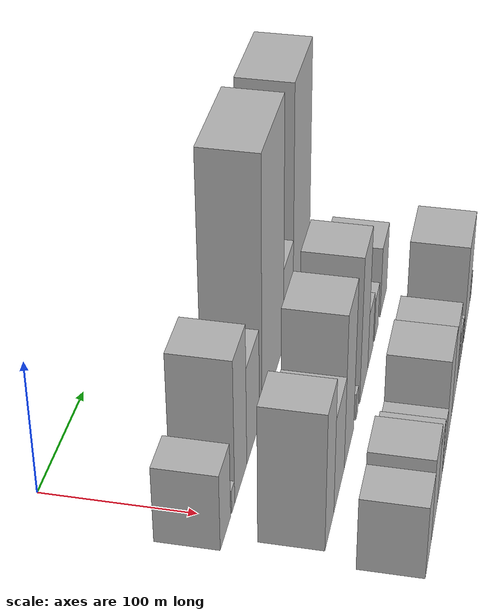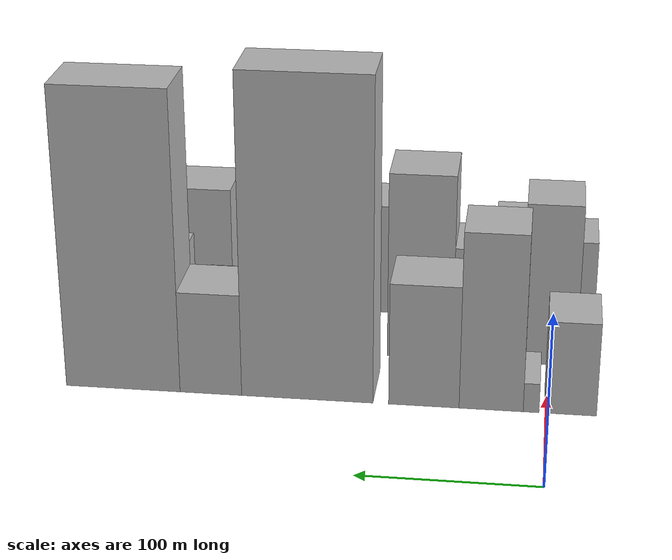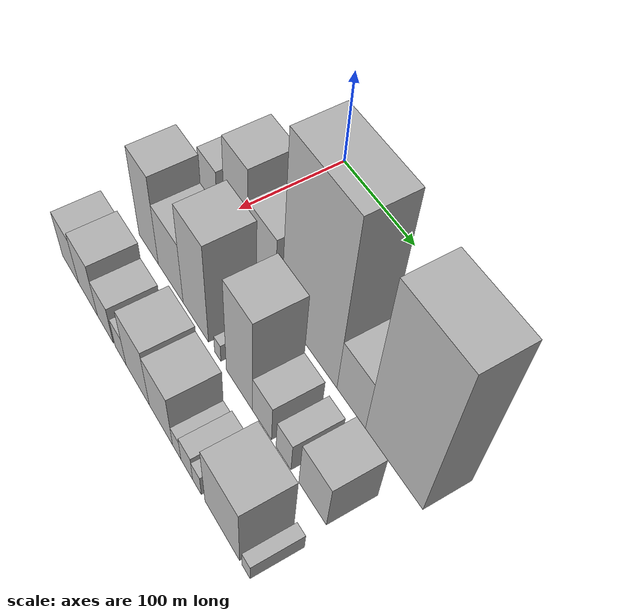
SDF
<sdf version="1.6">
 <world name="default">
  <model name="building_18">
   <static>1</static>
   <pose>100.0000 -13.6003 0 0.000000 0.000000 0.000000</pose>
   <link name="link">
    <pose>0 0 28.50 0 0 0</pose>
    <collision name="collision"><geometry><box><size>40.0000 29.0871 57.0000</size></box></geometry></collision>
    <visual name="visual">
     <cast_shadows>0</cast_shadows>
     <geometry><box><size>40.0000 29.0871 57.0000</size></box></geometry>
     <material>
      <script>
       <uri>model://HANNAS_wall/materials/scripts</uri>
       <uri>model://HANNAS_wall/materials/textures</uri>
       <name>vrc/HANNAS_wall</name>
      </script>
     </material>
    </visual>
   </link>
  </model>
  <model name="building_19">
   <static>1</static>
   <pose>100.0000 8.3785 0 0.000000 0.000000 0.000000</pose>
   <link name="link">
    <pose>0 0 9.00 0 0 0</pose>
    <collision name="collision"><geometry><box><size>40.0000 8.8705 18.0000</size></box></geometry></collision>
    <visual name="visual">
     <cast_shadows>0</cast_shadows>
     <geometry><box><size>40.0000 8.8705 18.0000</size></box></geometry>
     <material>
      <script>
       <uri>model://HANNAS_wall/materials/scripts</uri>
       <uri>model://HANNAS_wall/materials/textures</uri>
       <name>vrc/HANNAS_wall</name>
      </script>
     </material>
    </visual>
   </link>
  </model>
  <model name="building_20">
   <static>1</static>
   <pose>100.0000 30.8824 0 0.000000 0.000000 0.000000</pose>
   <link name="link">
    <pose>0 0 54.00 0 0 0</pose>
    <collision name="collision"><geometry><box><size>40.0000 36.1372 108.0000</size></box></geometry></collision>
    <visual name="visual">
     <cast_shadows>0</cast_shadows>
     <geometry><box><size>40.0000 36.1372 108.0000</size></box></geometry>
     <material>
      <script>
       <uri>model://HANNAS_wall/materials/scripts</uri>
       <uri>model://HANNAS_wall/materials/textures</uri>
       <name>vrc/HANNAS_wall</name>
      </script>
     </material>
    </visual>
   </link>
  </model>
  <model name="building_21">
   <static>1</static>
   <pose>100.0000 68.9790 0 0.000000 0.000000 0.000000</pose>
   <link name="link">
    <pose>0 0 37.50 0 0 0</pose>
    <collision name="collision"><geometry><box><size>40.0000 40.0560 75.0000</size></box></geometry></collision>
    <visual name="visual">
     <cast_shadows>0</cast_shadows>
     <geometry><box><size>40.0000 40.0560 75.0000</size></box></geometry>
     <material>
      <script>
       <uri>model://HANNAS_wall/materials/scripts</uri>
       <uri>model://HANNAS_wall/materials/textures</uri>
       <name>vrc/HANNAS_wall</name>
      </script>
     </material>
    </visual>
   </link>
  </model>
  <model name="building_22">
   <static>1</static>
   <pose>100.0000 135.8817 0 0.000000 0.000000 0.000000</pose>
   <link name="link">
    <pose>0 0 97.50 0 0 0</pose>
    <collision name="collision"><geometry><box><size>40.0000 75.7494 195.0000</size></box></geometry></collision>
    <visual name="visual">
     <cast_shadows>0</cast_shadows>
     <geometry><box><size>40.0000 75.7494 195.0000</size></box></geometry>
     <material>
      <script>
       <uri>model://HANNAS_wall/materials/scripts</uri>
       <uri>model://HANNAS_wall/materials/textures</uri>
       <name>vrc/HANNAS_wall</name>
      </script>
     </material>
    </visual>
   </link>
  </model>
  <model name="building_23">
   <static>1</static>
   <pose>100.0000 191.7278 0 0.000000 0.000000 0.000000</pose>
   <link name="link">
    <pose>0 0 31.50 0 0 0</pose>
    <collision name="collision"><geometry><box><size>40.0000 35.9429 63.0000</size></box></geometry></collision>
    <visual name="visual">
     <cast_shadows>0</cast_shadows>
     <geometry><box><size>40.0000 35.9429 63.0000</size></box></geometry>
     <material>
      <script>
       <uri>model://HANNAS_wall/materials/scripts</uri>
       <uri>model://HANNAS_wall/materials/textures</uri>
       <name>vrc/HANNAS_wall</name>
      </script>
     </material>
    </visual>
   </link>
  </model>
  <model name="building_24">
   <static>1</static>
   <pose>100.0000 243.2532 0 0.000000 0.000000 0.000000</pose>
   <link name="link">
    <pose>0 0 91.50 0 0 0</pose>
    <collision name="collision"><geometry><box><size>40.0000 67.1081 183.0000</size></box></geometry></collision>
    <visual name="visual">
     <cast_shadows>0</cast_shadows>
     <geometry><box><size>40.0000 67.1081 183.0000</size></box></geometry>
     <material>
      <script>
       <uri>model://HANNAS_wall/materials/scripts</uri>
       <uri>model://HANNAS_wall/materials/textures</uri>
       <name>vrc/HANNAS_wall</name>
      </script>
     </material>
    </visual>
   </link>
  </model>
  <model name="building_50">
   <static>1</static>
   <pose>160.0000 -0.6648 0 0.000000 0.000000 0.000000</pose>
   <link name="link">
    <pose>0 0 51.00 0 0 0</pose>
    <collision name="collision"><geometry><box><size>40.0000 32.8262 102.0000</size></box></geometry></collision>
    <visual name="visual">
     <cast_shadows>0</cast_shadows>
     <geometry><box><size>40.0000 32.8262 102.0000</size></box></geometry>
     <material>
      <script>
       <uri>model://HANNAS_wall/materials/scripts</uri>
       <uri>model://HANNAS_wall/materials/textures</uri>
       <name>vrc/HANNAS_wall</name>
      </script>
     </material>
    </visual>
   </link>
  </model>
  <model name="building_51">
   <static>1</static>
   <pose>160.0000 36.0447 0 0.000000 0.000000 0.000000</pose>
   <link name="link">
    <pose>0 0 36.00 0 0 0</pose>
    <collision name="collision"><geometry><box><size>40.0000 40.5929 72.0000</size></box></geometry></collision>
    <visual name="visual">
     <cast_shadows>0</cast_shadows>
     <geometry><box><size>40.0000 40.5929 72.0000</size></box></geometry>
     <material>
      <script>
       <uri>model://HANNAS_wall/materials/scripts</uri>
       <uri>model://HANNAS_wall/materials/textures</uri>
       <name>vrc/HANNAS_wall</name>
      </script>
     </material>
    </visual>
   </link>
  </model>
  <model name="building_52">
   <static>1</static>
   <pose>160.0000 75.9765 0 0.000000 0.000000 0.000000</pose>
   <link name="link">
    <pose>0 0 58.50 0 0 0</pose>
    <collision name="collision"><geometry><box><size>40.0000 39.2706 117.0000</size></box></geometry></collision>
    <visual name="visual">
     <cast_shadows>0</cast_shadows>
     <geometry><box><size>40.0000 39.2706 117.0000</size></box></geometry>
     <material>
      <script>
       <uri>model://HANNAS_wall/materials/scripts</uri>
       <uri>model://HANNAS_wall/materials/textures</uri>
       <name>vrc/HANNAS_wall</name>
      </script>
     </material>
    </visual>
   </link>
  </model>
  <model name="building_53">
   <static>1</static>
   <pose>160.0000 109.2869 0 0.000000 0.000000 0.000000</pose>
   <link name="link">
    <pose>0 0 10.50 0 0 0</pose>
    <collision name="collision"><geometry><box><size>40.0000 9.3502 21.0000</size></box></geometry></collision>
    <visual name="visual">
     <cast_shadows>0</cast_shadows>
     <geometry><box><size>40.0000 9.3502 21.0000</size></box></geometry>
     <material>
      <script>
       <uri>model://HANNAS_wall/materials/scripts</uri>
       <uri>model://HANNAS_wall/materials/textures</uri>
       <name>vrc/HANNAS_wall</name>
      </script>
     </material>
    </visual>
   </link>
  </model>
  <model name="building_54">
   <static>1</static>
   <pose>160.0000 140.4890 0 0.000000 0.000000 0.000000</pose>
   <link name="link">
    <pose>0 0 57.00 0 0 0</pose>
    <collision name="collision"><geometry><box><size>40.0000 37.0540 114.0000</size></box></geometry></collision>
    <visual name="visual">
     <cast_shadows>0</cast_shadows>
     <geometry><box><size>40.0000 37.0540 114.0000</size></box></geometry>
     <material>
      <script>
       <uri>model://HANNAS_wall/materials/scripts</uri>
       <uri>model://HANNAS_wall/materials/textures</uri>
       <name>vrc/HANNAS_wall</name>
      </script>
     </material>
    </visual>
   </link>
  </model>
  <model name="building_55">
   <static>1</static>
   <pose>160.0000 171.8377 0 0.000000 0.000000 0.000000</pose>
   <link name="link">
    <pose>0 0 22.50 0 0 0</pose>
    <collision name="collision"><geometry><box><size>40.0000 25.6434 45.0000</size></box></geometry></collision>
    <visual name="visual">
     <cast_shadows>0</cast_shadows>
     <geometry><box><size>40.0000 25.6434 45.0000</size></box></geometry>
     <material>
      <script>
       <uri>model://HANNAS_wall/materials/scripts</uri>
       <uri>model://HANNAS_wall/materials/textures</uri>
       <name>vrc/HANNAS_wall</name>
      </script>
     </material>
    </visual>
   </link>
  </model>
  <model name="building_56">
   <static>1</static>
   <pose>160.0000 200.3286 0 0.000000 0.000000 0.000000</pose>
   <link name="link">
    <pose>0 0 18.00 0 0 0</pose>
    <collision name="collision"><geometry><box><size>40.0000 19.3385 36.0000</size></box></geometry></collision>
    <visual name="visual">
     <cast_shadows>0</cast_shadows>
     <geometry><box><size>40.0000 19.3385 36.0000</size></box></geometry>
     <material>
      <script>
       <uri>model://HANNAS_wall/materials/scripts</uri>
       <uri>model://HANNAS_wall/materials/textures</uri>
       <name>vrc/HANNAS_wall</name>
      </script>
     </material>
    </visual>
   </link>
  </model>
  <model name="building_57">
   <static>1</static>
   <pose>160.0000 236.9625 0 0.000000 0.000000 0.000000</pose>
   <link name="link">
    <pose>0 0 28.50 0 0 0</pose>
    <collision name="collision"><geometry><box><size>40.0000 33.9293 57.0000</size></box></geometry></collision>
    <visual name="visual">
     <cast_shadows>0</cast_shadows>
     <geometry><box><size>40.0000 33.9293 57.0000</size></box></geometry>
     <material>
      <script>
       <uri>model://HANNAS_wall/materials/scripts</uri>
       <uri>model://HANNAS_wall/materials/textures</uri>
       <name>vrc/HANNAS_wall</name>
      </script>
     </material>
    </visual>
   </link>
  </model>
  <model name="building_86">
   <static>1</static>
   <pose>220.0000 -13.3803 0 0.000000 0.000000 0.000000</pose>
   <link name="link">
    <pose>0 0 27.00 0 0 0</pose>
    <collision name="collision"><geometry><box><size>40.0000 30.1517 54.0000</size></box></geometry></collision>
    <visual name="visual">
     <cast_shadows>0</cast_shadows>
     <geometry><box><size>40.0000 30.1517 54.0000</size></box></geometry>
     <material>
      <script>
       <uri>model://HANNAS_wall/materials/scripts</uri>
       <uri>model://HANNAS_wall/materials/textures</uri>
       <name>vrc/HANNAS_wall</name>
      </script>
     </material>
    </visual>
   </link>
  </model>
  <model name="building_87">
   <static>1</static>
   <pose>220.0000 18.2706 0 0.000000 0.000000 0.000000</pose>
   <link name="link">
    <pose>0 0 31.50 0 0 0</pose>
    <collision name="collision"><geometry><box><size>40.0000 33.1500 63.0000</size></box></geometry></collision>
    <visual name="visual">
     <cast_shadows>0</cast_shadows>
     <geometry><box><size>40.0000 33.1500 63.0000</size></box></geometry>
     <material>
      <script>
       <uri>model://HANNAS_wall/materials/scripts</uri>
       <uri>model://HANNAS_wall/materials/textures</uri>
       <name>vrc/HANNAS_wall</name>
      </script>
     </material>
    </visual>
   </link>
  </model>
  <model name="building_88">
   <static>1</static>
   <pose>220.0000 48.2484 0 0.000000 0.000000 0.000000</pose>
   <link name="link">
    <pose>0 0 22.50 0 0 0</pose>
    <collision name="collision"><geometry><box><size>40.0000 26.8056 45.0000</size></box></geometry></collision>
    <visual name="visual">
     <cast_shadows>0</cast_shadows>
     <geometry><box><size>40.0000 26.8056 45.0000</size></box></geometry>
     <material>
      <script>
       <uri>model://HANNAS_wall/materials/scripts</uri>
       <uri>model://HANNAS_wall/materials/textures</uri>
       <name>vrc/HANNAS_wall</name>
      </script>
     </material>
    </visual>
   </link>
  </model>
  <model name="building_89">
   <static>1</static>
   <pose>220.0000 73.7728 0 0.000000 0.000000 0.000000</pose>
   <link name="link">
    <pose>0 0 18.00 0 0 0</pose>
    <collision name="collision"><geometry><box><size>40.0000 18.2432 36.0000</size></box></geometry></collision>
    <visual name="visual">
     <cast_shadows>0</cast_shadows>
     <geometry><box><size>40.0000 18.2432 36.0000</size></box></geometry>
     <material>
      <script>
       <uri>model://HANNAS_wall/materials/scripts</uri>
       <uri>model://HANNAS_wall/materials/textures</uri>
       <name>vrc/HANNAS_wall</name>
      </script>
     </material>
    </visual>
   </link>
  </model>
  <model name="building_90">
   <static>1</static>
   <pose>220.0000 101.2472 0 0.000000 0.000000 0.000000</pose>
   <link name="link">
    <pose>0 0 36.00 0 0 0</pose>
    <collision name="collision"><geometry><box><size>40.0000 36.7056 72.0000</size></box></geometry></collision>
    <visual name="visual">
     <cast_shadows>0</cast_shadows>
     <geometry><box><size>40.0000 36.7056 72.0000</size></box></geometry>
     <material>
      <script>
       <uri>model://HANNAS_wall/materials/scripts</uri>
       <uri>model://HANNAS_wall/materials/textures</uri>
       <name>vrc/HANNAS_wall</name>
      </script>
     </material>
    </visual>
   </link>
  </model>
  <model name="building_91">
   <static>1</static>
   <pose>220.0000 137.0790 0 0.000000 0.000000 0.000000</pose>
   <link name="link">
    <pose>0 0 33.00 0 0 0</pose>
    <collision name="collision"><geometry><box><size>40.0000 34.9580 66.0000</size></box></geometry></collision>
    <visual name="visual">
     <cast_shadows>0</cast_shadows>
     <geometry><box><size>40.0000 34.9580 66.0000</size></box></geometry>
     <material>
      <script>
       <uri>model://HANNAS_wall/materials/scripts</uri>
       <uri>model://HANNAS_wall/materials/textures</uri>
       <name>vrc/HANNAS_wall</name>
      </script>
     </material>
    </visual>
   </link>
  </model>
  <model name="building_92">
   <static>1</static>
   <pose>220.0000 160.5952 0 0.000000 0.000000 0.000000</pose>
   <link name="link">
    <pose>0 0 13.50 0 0 0</pose>
    <collision name="collision"><geometry><box><size>40.0000 12.0743 27.0000</size></box></geometry></collision>
    <visual name="visual">
     <cast_shadows>0</cast_shadows>
     <geometry><box><size>40.0000 12.0743 27.0000</size></box></geometry>
     <material>
      <script>
       <uri>model://HANNAS_wall/materials/scripts</uri>
       <uri>model://HANNAS_wall/materials/textures</uri>
       <name>vrc/HANNAS_wall</name>
      </script>
     </material>
    </visual>
   </link>
  </model>
  <model name="building_93">
   <static>1</static>
   <pose>220.0000 174.9327 0 0.000000 0.000000 0.000000</pose>
   <link name="link">
    <pose>0 0 16.50 0 0 0</pose>
    <collision name="collision"><geometry><box><size>40.0000 16.6008 33.0000</size></box></geometry></collision>
    <visual name="visual">
     <cast_shadows>0</cast_shadows>
     <geometry><box><size>40.0000 16.6008 33.0000</size></box></geometry>
     <material>
      <script>
       <uri>model://HANNAS_wall/materials/scripts</uri>
       <uri>model://HANNAS_wall/materials/textures</uri>
       <name>vrc/HANNAS_wall</name>
      </script>
     </material>
    </visual>
   </link>
  </model>
  <model name="building_94">
   <static>1</static>
   <pose>220.0000 189.2527 0 0.000000 0.000000 0.000000</pose>
   <link name="link">
    <pose>0 0 13.50 0 0 0</pose>
    <collision name="collision"><geometry><box><size>40.0000 12.0391 27.0000</size></box></geometry></collision>
    <visual name="visual">
     <cast_shadows>0</cast_shadows>
     <geometry><box><size>40.0000 12.0391 27.0000</size></box></geometry>
     <material>
      <script>
       <uri>model://HANNAS_wall/materials/scripts</uri>
       <uri>model://HANNAS_wall/materials/textures</uri>
       <name>vrc/HANNAS_wall</name>
      </script>
     </material>
    </visual>
   </link>
  </model>
  <model name="building_95">
   <static>1</static>
   <pose>220.0000 223.1454 0 0.000000 0.000000 0.000000</pose>
   <link name="link">
    <pose>0 0 39.00 0 0 0</pose>
    <collision name="collision"><geometry><box><size>40.0000 45.7463 78.0000</size></box></geometry></collision>
    <visual name="visual">
     <cast_shadows>0</cast_shadows>
     <geometry><box><size>40.0000 45.7463 78.0000</size></box></geometry>
     <material>
      <script>
       <uri>model://HANNAS_wall/materials/scripts</uri>
       <uri>model://HANNAS_wall/materials/textures</uri>
       <name>vrc/HANNAS_wall</name>
      </script>
     </material>
    </visual>
   </link>
  </model>
  <model name="building_96">
   <static>1</static>
   <pose>220.0000 254.1421 0 0.000000 0.000000 0.000000</pose>
   <link name="link">
    <pose>0 0 10.50 0 0 0</pose>
    <collision name="collision"><geometry><box><size>40.0000 10.2472 21.0000</size></box></geometry></collision>
    <visual name="visual">
     <cast_shadows>0</cast_shadows>
     <geometry><box><size>40.0000 10.2472 21.0000</size></box></geometry>
     <material>
      <script>
       <uri>model://HANNAS_wall/materials/scripts</uri>
       <uri>model://HANNAS_wall/materials/textures</uri>
       <name>vrc/HANNAS_wall</name>
      </script>
     </material>
    </visual>
   </link>
  </model>
 </world>
</sdf>
